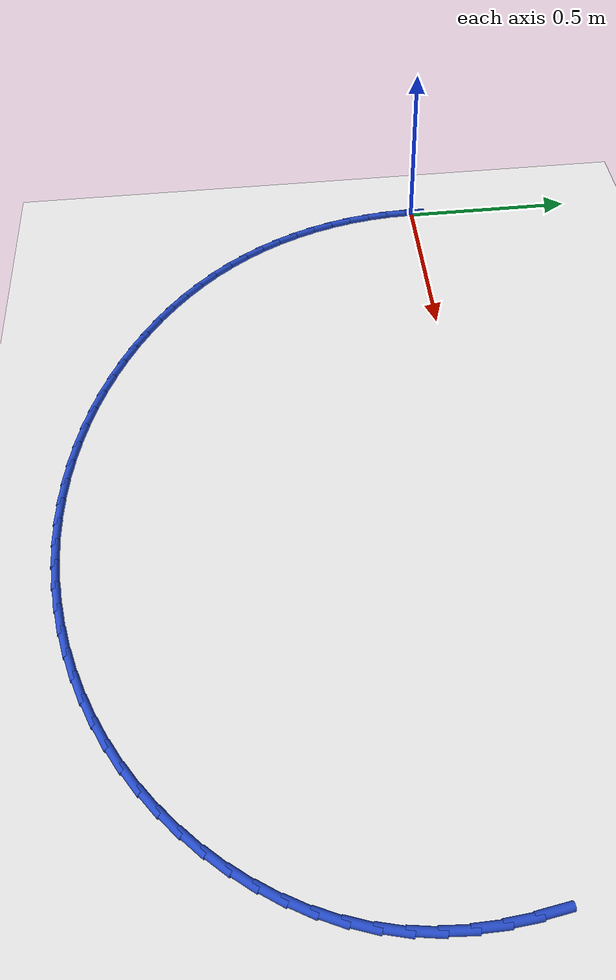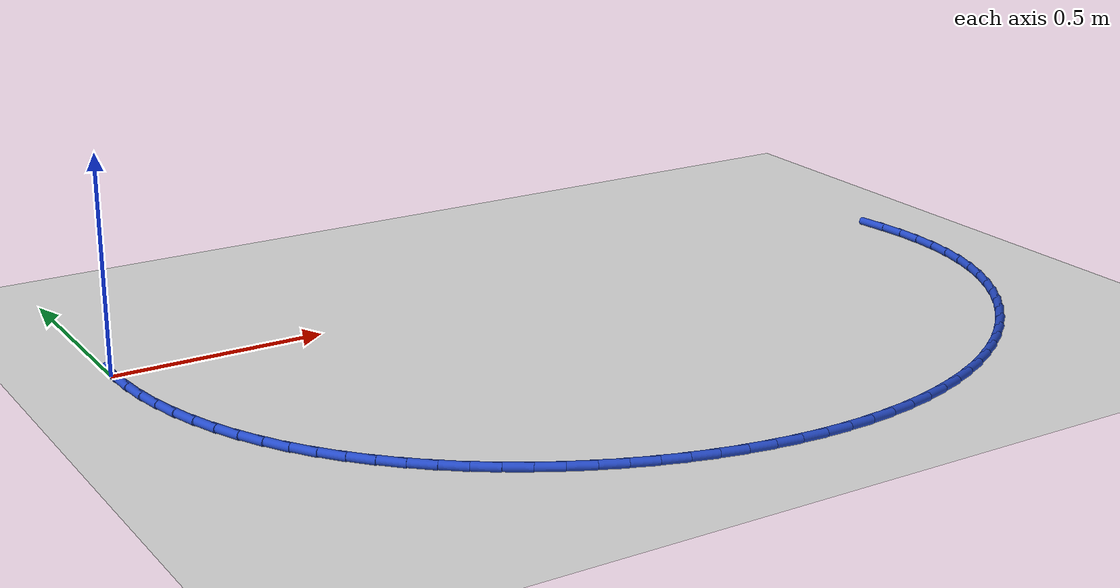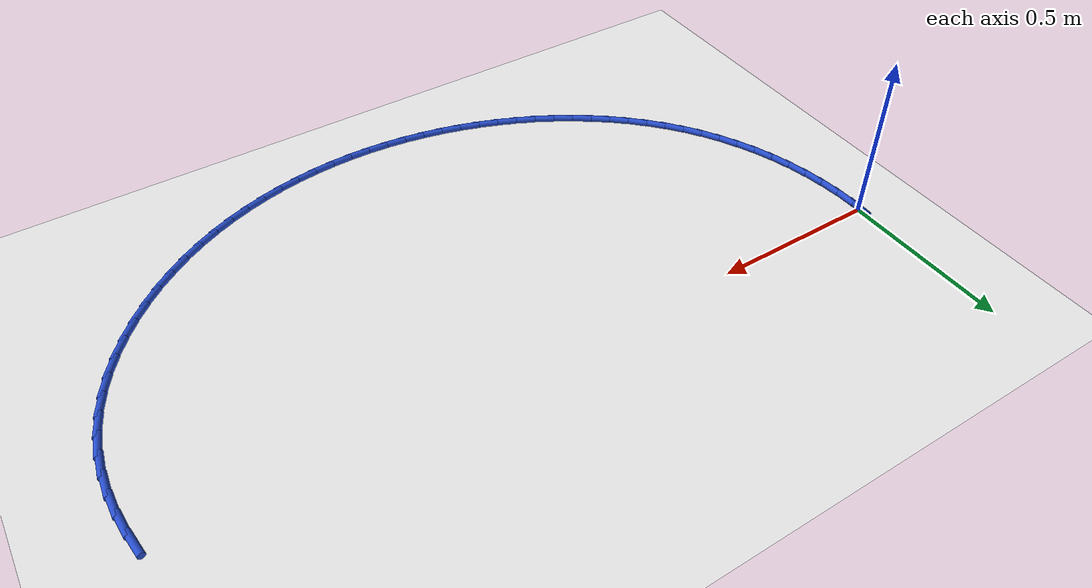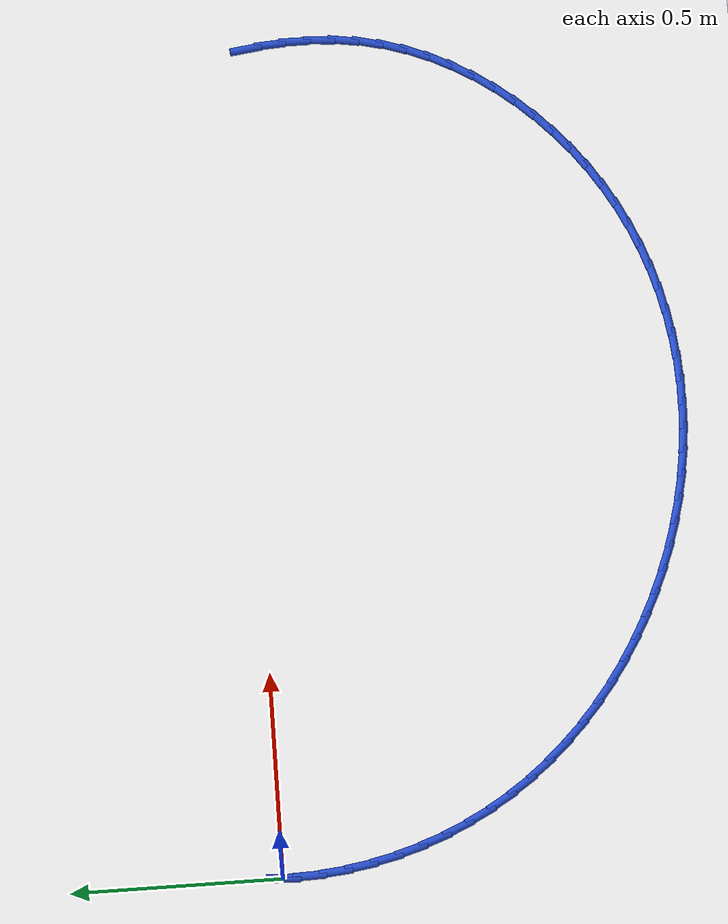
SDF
<sdf version="1.6">
 <world name="default">
  <model name="ground_plane">
   <static>1</static>
   <link name="link">
    <collision name="collision">
     <geometry><plane><normal>0 0 1</normal><size>100 100</size></plane></geometry>
     <surface><friction><ode><mu>100</mu><mu2>50</mu2></ode></friction></surface>
    </collision>
    <visual name="visual">
     <cast_shadows>0</cast_shadows>
     <geometry><plane><normal>0 0 1</normal><size>100 100</size></plane></geometry>
     <material>
      <script><uri>file://media/materials/scripts/gazebo.material</uri><name>Gazebo/WhiteGlow</name></script>
     </material>
    </visual>
   </link>
  </model>
  <model name="line">
   <link name="link_0">
    <pose>-2.0816681711721685e-17 1.5265566588595902e-16 0.01 0 1.57 1.5303718836059803</pose>
    <collision name="collision">
     <geometry><cylinder><radius>0.01</radius><length>0.08</length></cylinder></geometry>
    </collision>
    <visual name="visual">
     <material>
      <script><name>Gazebo/Blue</name><uri>file://media/materials/scripts/gazebo.material</uri></script>
     </material>
     <geometry><cylinder><radius>0.01</radius><length>0.08</length></cylinder></geometry>
    </visual>
   </link>
   <link name="link_56">
    <pose>2.1146289127504314 -0.044419449909421066 0.01 0 1.57 -1.4389344621826807</pose>
    <collision name="collision">
     <geometry><cylinder><radius>0.01</radius><length>0.08</length></cylinder></geometry>
    </collision>
    <visual name="visual">
     <material>
      <script><name>Gazebo/Blue</name><uri>file://media/materials/scripts/gazebo.material</uri></script>
     </material>
     <geometry><cylinder><radius>0.01</radius><length>0.08</length></cylinder></geometry>
    </visual>
   </link>
   <link name="link_57">
    <pose>2.122792557424717 -0.10597078999630039 0.01 0 1.57 -1.5045995138808235</pose>
    <collision name="collision">
     <geometry><cylinder><radius>0.01</radius><length>0.08</length></cylinder></geometry>
    </collision>
    <visual name="visual">
     <material>
      <script><name>Gazebo/Blue</name><uri>file://media/materials/scripts/gazebo.material</uri></script>
     </material>
     <geometry><cylinder><radius>0.01</radius><length>0.08</length></cylinder></geometry>
    </visual>
   </link>
   <link name="link_58">
    <pose>2.126874795708992 -0.1675488864064684 0.01 0 1.57 1.565920846297176</pose>
    <collision name="collision">
     <geometry><cylinder><radius>0.01</radius><length>0.08</length></cylinder></geometry>
    </collision>
    <visual name="visual">
     <material>
      <script><name>Gazebo/Blue</name><uri>file://media/materials/scripts/gazebo.material</uri></script>
     </material>
     <geometry><cylinder><radius>0.01</radius><length>0.08</length></cylinder></geometry>
    </visual>
   </link>
   <link name="link_59">
    <pose>2.126575904974597 -0.2288532781047258 0.01 0 1.57 1.4889816050388824</pose>
    <collision name="collision">
     <geometry><cylinder><radius>0.01</radius><length>0.08</length></cylinder></geometry>
    </collision>
    <visual name="visual">
     <material>
      <script><name>Gazebo/Blue</name><uri>file://media/materials/scripts/gazebo.material</uri></script>
     </material>
     <geometry><cylinder><radius>0.01</radius><length>0.08</length></cylinder></geometry>
    </visual>
   </link>
   <link name="link_60">
    <pose>2.121596162592872 -0.2895835040558706 0.01 0 1.57 1.4059015121983074</pose>
    <collision name="collision">
     <geometry><cylinder><radius>0.01</radius><length>0.08</length></cylinder></geometry>
    </collision>
    <visual name="visual">
     <material>
      <script><name>Gazebo/Blue</name><uri>file://media/materials/scripts/gazebo.material</uri></script>
     </material>
     <geometry><cylinder><radius>0.01</radius><length>0.08</length></cylinder></geometry>
    </visual>
   </link>
   <link name="link_61">
    <pose>2.111635845935158 -0.3494391032247035 0.01 0 1.57 1.3171328576119283</pose>
    <collision name="collision">
     <geometry><cylinder><radius>0.01</radius><length>0.08</length></cylinder></geometry>
    </collision>
    <visual name="visual">
     <material>
      <script><name>Gazebo/Blue</name><uri>file://media/materials/scripts/gazebo.material</uri></script>
     </material>
     <geometry><cylinder><radius>0.01</radius><length>0.08</length></cylinder></geometry>
    </visual>
   </link>
   <link name="link_62">
    <pose>2.0964221161447747 -0.40812319953450554 0.01 0 1.57 1.2288651771701562</pose>
    <collision name="collision">
     <geometry><cylinder><radius>0.01</radius><length>0.08</length></cylinder></geometry>
    </collision>
    <visual name="visual">
     <material>
      <script><name>Gazebo/Blue</name><uri>file://media/materials/scripts/gazebo.material</uri></script>
     </material>
     <geometry><cylinder><radius>0.01</radius><length>0.08</length></cylinder></geometry>
    </visual>
   </link>
   <link name="link_63">
    <pose>2.0760413548923813 -0.4653868190659603 0.01 0 1.57 1.1453648095254507</pose>
    <collision name="collision">
     <geometry><cylinder><radius>0.01</radius><length>0.08</length></cylinder></geometry>
    </collision>
    <visual name="visual">
     <material>
      <script><name>Gazebo/Blue</name><uri>file://media/materials/scripts/gazebo.material</uri></script>
     </material>
     <geometry><cylinder><radius>0.01</radius><length>0.08</length></cylinder></geometry>
    </visual>
   </link>
   <link name="link_64">
    <pose>2.050835990624423 -0.5210151318086342 0.01 0 1.57 1.0664748324044002</pose>
    <collision name="collision">
     <geometry><cylinder><radius>0.01</radius><length>0.08</length></cylinder></geometry>
    </collision>
    <visual name="visual">
     <material>
      <script><name>Gazebo/Blue</name><uri>file://media/materials/scripts/gazebo.material</uri></script>
     </material>
     <geometry><cylinder><radius>0.01</radius><length>0.08</length></cylinder></geometry>
    </visual>
   </link>
   <link name="link_65">
    <pose>2.0211539564285994 -0.5747940417975407 0.01 0 1.57 0.991764750637772</pose>
    <collision name="collision">
     <geometry><cylinder><radius>0.01</radius><length>0.08</length></cylinder></geometry>
    </collision>
    <visual name="visual">
     <material>
      <script><name>Gazebo/Blue</name><uri>file://media/materials/scripts/gazebo.material</uri></script>
     </material>
     <geometry><cylinder><radius>0.01</radius><length>0.08</length></cylinder></geometry>
    </visual>
   </link>
   <link name="link_66">
    <pose>1.9873431853926107 -0.6265094530676931 0.01 0 1.57 0.9206844364532961</pose>
    <collision name="collision">
     <geometry><cylinder><radius>0.01</radius><length>0.08</length></cylinder></geometry>
    </collision>
    <visual name="visual">
     <material>
      <script><name>Gazebo/Blue</name><uri>file://media/materials/scripts/gazebo.material</uri></script>
     </material>
     <geometry><cylinder><radius>0.01</radius><length>0.08</length></cylinder></geometry>
    </visual>
   </link>
   <link name="link_67">
    <pose>1.9497516106041561 -0.6759472696541027 0.01 0 1.57 0.8526111015912158</pose>
    <collision name="collision">
     <geometry><cylinder><radius>0.01</radius><length>0.08</length></cylinder></geometry>
    </collision>
    <visual name="visual">
     <material>
      <script><name>Gazebo/Blue</name><uri>file://media/materials/scripts/gazebo.material</uri></script>
     </material>
     <geometry><cylinder><radius>0.01</radius><length>0.08</length></cylinder></geometry>
    </visual>
   </link>
   <link name="link_68">
    <pose>1.908727165150935 -0.7228933955917834 0.01 0 1.57 0.7868804113805702</pose>
    <collision name="collision">
     <geometry><cylinder><radius>0.01</radius><length>0.08</length></cylinder></geometry>
    </collision>
    <visual name="visual">
     <material>
      <script><name>Gazebo/Blue</name><uri>file://media/materials/scripts/gazebo.material</uri></script>
     </material>
     <geometry><cylinder><radius>0.01</radius><length>0.08</length></cylinder></geometry>
    </visual>
   </link>
   <link name="link_69">
    <pose>1.8646177821206469 -0.7671337349157468 0.01 0 1.57 0.7228042023481455</pose>
    <collision name="collision">
     <geometry><cylinder><radius>0.01</radius><length>0.08</length></cylinder></geometry>
    </collision>
    <visual name="visual">
     <material>
      <script><name>Gazebo/Blue</name><uri>file://media/materials/scripts/gazebo.material</uri></script>
     </material>
     <geometry><cylinder><radius>0.01</radius><length>0.08</length></cylinder></geometry>
    </visual>
   </link>
   <link name="link_70">
    <pose>1.8177713946009912 -0.8084541916610063 0.01 0 1.57 0.6596779174228672</pose>
    <collision name="collision">
     <geometry><cylinder><radius>0.01</radius><length>0.08</length></cylinder></geometry>
    </collision>
    <visual name="visual">
     <material>
      <script><name>Gazebo/Blue</name><uri>file://media/materials/scripts/gazebo.material</uri></script>
     </material>
     <geometry><cylinder><radius>0.01</radius><length>0.08</length></cylinder></geometry>
    </visual>
   </link>
   <link name="link_71">
    <pose>1.7685359356796686 -0.8466406698625739 0.01 0 1.57 0.5968023985616995</pose>
    <collision name="collision">
     <geometry><cylinder><radius>0.01</radius><length>0.08</length></cylinder></geometry>
    </collision>
    <visual name="visual">
     <material>
      <script><name>Gazebo/Blue</name><uri>file://media/materials/scripts/gazebo.material</uri></script>
     </material>
     <geometry><cylinder><radius>0.01</radius><length>0.08</length></cylinder></geometry>
    </visual>
   </link>
   <link name="link_72">
    <pose>1.7172571188681824 -0.881482206658636 0.01 0 1.57 0.5342884557325881</pose>
    <collision name="collision">
     <geometry><cylinder><radius>0.01</radius><length>0.08</length></cylinder></geometry>
    </collision>
    <visual name="visual">
     <material>
      <script><name>Gazebo/Blue</name><uri>file://media/materials/scripts/gazebo.material</uri></script>
     </material>
     <geometry><cylinder><radius>0.01</radius><length>0.08</length></cylinder></geometry>
    </visual>
   </link>
   <link name="link_73">
    <pose>1.6642073202267287 -0.9128713606623244 0.01 0 1.57 0.4729122458575728</pose>
    <collision name="collision">
     <geometry><cylinder><radius>0.01</radius><length>0.08</length></cylinder></geometry>
    </collision>
    <visual name="visual">
     <material>
      <script><name>Gazebo/Blue</name><uri>file://media/materials/scripts/gazebo.material</uri></script>
     </material>
     <geometry><cylinder><radius>0.01</radius><length>0.08</length></cylinder></geometry>
    </visual>
   </link>
   <link name="link_74">
    <pose>1.6095705273699406 -0.9408254576021949 0.01 0 1.57 0.41277100673846173</pose>
    <collision name="collision">
     <geometry><cylinder><radius>0.01</radius><length>0.08</length></cylinder></geometry>
    </collision>
    <visual name="visual">
     <material>
      <script><name>Gazebo/Blue</name><uri>file://media/materials/scripts/gazebo.material</uri></script>
     </material>
     <geometry><cylinder><radius>0.01</radius><length>0.08</length></cylinder></geometry>
    </visual>
   </link>
   <link name="link_75">
    <pose>1.5535254652178672 -0.9653692519065489 0.01 0 1.57 0.3538675274624951</pose>
    <collision name="collision">
     <geometry><cylinder><radius>0.01</radius><length>0.08</length></cylinder></geometry>
    </collision>
    <visual name="visual">
     <material>
      <script><name>Gazebo/Blue</name><uri>file://media/materials/scripts/gazebo.material</uri></script>
     </material>
     <geometry><cylinder><radius>0.01</radius><length>0.08</length></cylinder></geometry>
    </visual>
   </link>
   <link name="link_76">
    <pose>1.496250858690554 -0.9865274980036887 0.01 0 1.57 0.2961661936802347</pose>
    <collision name="collision">
     <geometry><cylinder><radius>0.01</radius><length>0.08</length></cylinder></geometry>
    </collision>
    <visual name="visual">
     <material>
      <script><name>Gazebo/Blue</name><uri>file://media/materials/scripts/gazebo.material</uri></script>
     </material>
     <geometry><cylinder><radius>0.01</radius><length>0.08</length></cylinder></geometry>
    </visual>
   </link>
   <link name="link_77">
    <pose>1.4379254327080495 -1.0043249503219154 0.01 0 1.57 0.23959817533482256</pose>
    <collision name="collision">
     <geometry><cylinder><radius>0.01</radius><length>0.08</length></cylinder></geometry>
    </collision>
    <visual name="visual">
     <material>
      <script><name>Gazebo/Blue</name><uri>file://media/materials/scripts/gazebo.material</uri></script>
     </material>
     <geometry><cylinder><radius>0.01</radius><length>0.08</length></cylinder></geometry>
    </visual>
   </link>
   <link name="link_78">
    <pose>1.3787279121903993 -1.0187863632895318 0.01 0 1.57 0.1840667005748443</pose>
    <collision name="collision">
     <geometry><cylinder><radius>0.01</radius><length>0.08</length></cylinder></geometry>
    </collision>
    <visual name="visual">
     <material>
      <script><name>Gazebo/Blue</name><uri>file://media/materials/scripts/gazebo.material</uri></script>
     </material>
     <geometry><cylinder><radius>0.01</radius><length>0.08</length></cylinder></geometry>
    </visual>
   </link>
   <link name="link_79">
    <pose>1.3188370220576515 -1.0299364913348386 0.01 0 1.57 0.12945209036944957</pose>
    <collision name="collision">
     <geometry><cylinder><radius>0.01</radius><length>0.08</length></cylinder></geometry>
    </collision>
    <visual name="visual">
     <material>
      <script><name>Gazebo/Blue</name><uri>file://media/materials/scripts/gazebo.material</uri></script>
     </material>
     <geometry><cylinder><radius>0.01</radius><length>0.08</length></cylinder></geometry>
    </visual>
   </link>
   <link name="link_80">
    <pose>1.2584314872298523 -1.0378000888861385 0.01 0 1.57 0.07562093751727557</pose>
    <collision name="collision">
     <geometry><cylinder><radius>0.01</radius><length>0.08</length></cylinder></geometry>
    </collision>
    <visual name="visual">
     <material>
      <script><name>Gazebo/Blue</name><uri>file://media/materials/scripts/gazebo.material</uri></script>
     </material>
     <geometry><cylinder><radius>0.01</radius><length>0.08</length></cylinder></geometry>
    </visual>
   </link>
   <link name="link_81">
    <pose>1.1976896295996182 -1.0424022209237376 0.01 0 1.57 0.02260200500877963</pose>
    <collision name="collision">
     <geometry><cylinder><radius>0.01</radius><length>0.08</length></cylinder></geometry>
    </collision>
    <visual name="visual">
     <material>
      <script><name>Gazebo/Blue</name><uri>file://media/materials/scripts/gazebo.material</uri></script>
     </material>
     <geometry><cylinder><radius>0.01</radius><length>0.08</length></cylinder></geometry>
    </visual>
   </link>
   <link name="link_82">
    <pose>1.136775115061151 -1.0437792455790673 0.01 0 1.57 -0.029486556734163685</pose>
    <collision name="collision">
     <geometry><cylinder><radius>0.01</radius><length>0.08</length></cylinder></geometry>
    </collision>
    <visual name="visual">
     <material>
      <script><name>Gazebo/Blue</name><uri>file://media/materials/scripts/gazebo.material</uri></script>
     </material>
     <geometry><cylinder><radius>0.01</radius><length>0.08</length></cylinder></geometry>
    </visual>
   </link>
   <link name="link_83">
    <pose>1.0758331362884819 -1.0419817554874986 0.01 0 1.57 -0.08071972637590197</pose>
    <collision name="collision">
     <geometry><cylinder><radius>0.01</radius><length>0.08</length></cylinder></geometry>
    </collision>
    <visual name="visual">
     <material>
      <script><name>Gazebo/Blue</name><uri>file://media/materials/scripts/gazebo.material</uri></script>
     </material>
     <geometry><cylinder><radius>0.01</radius><length>0.08</length></cylinder></geometry>
    </visual>
   </link>
   <link name="link_84">
    <pose>1.0150077066381678 -1.0370612520051927 0.01 0 1.57 -0.13119992721764787</pose>
    <collision name="collision">
     <geometry><cylinder><radius>0.01</radius><length>0.08</length></cylinder></geometry>
    </collision>
    <visual name="visual">
     <material>
      <script><name>Gazebo/Blue</name><uri>file://media/materials/scripts/gazebo.material</uri></script>
     </material>
     <geometry><cylinder><radius>0.01</radius><length>0.08</length></cylinder></geometry>
    </visual>
   </link>
   <link name="link_85">
    <pose>0.9544428394667637 -1.029069236488312 0.01 0 1.57 -0.181040572360269</pose>
    <collision name="collision">
     <geometry><cylinder><radius>0.01</radius><length>0.08</length></cylinder></geometry>
    </collision>
    <visual name="visual">
     <material>
      <script><name>Gazebo/Blue</name><uri>file://media/materials/scripts/gazebo.material</uri></script>
     </material>
     <geometry><cylinder><radius>0.01</radius><length>0.08</length></cylinder></geometry>
    </visual>
   </link>
   <link name="link_86">
    <pose>0.8942825481308273 -1.018057210293018 0.01 0 1.57 -0.2303633789605129</pose>
    <collision name="collision">
     <geometry><cylinder><radius>0.01</radius><length>0.08</length></cylinder></geometry>
    </collision>
    <visual name="visual">
     <material>
      <script><name>Gazebo/Blue</name><uri>file://media/materials/scripts/gazebo.material</uri></script>
     </material>
     <geometry><cylinder><radius>0.01</radius><length>0.08</length></cylinder></geometry>
    </visual>
   </link>
   <link name="link_87">
    <pose>0.8346708459869131 -1.0040766747754721 0.01 0 1.57 -0.2792960202069562</pose>
    <collision name="collision">
     <geometry><cylinder><radius>0.01</radius><length>0.08</length></cylinder></geometry>
    </collision>
    <visual name="visual">
     <material>
      <script><name>Gazebo/Blue</name><uri>file://media/materials/scripts/gazebo.material</uri></script>
     </material>
     <geometry><cylinder><radius>0.01</radius><length>0.08</length></cylinder></geometry>
    </visual>
   </link>
   <link name="link_88">
    <pose>0.7757517463915786 -0.9871791312918361 0.01 0 1.57 -0.3279700684142357</pose>
    <collision name="collision">
     <geometry><cylinder><radius>0.01</radius><length>0.08</length></cylinder></geometry>
    </collision>
    <visual name="visual">
     <material>
      <script><name>Gazebo/Blue</name><uri>file://media/materials/scripts/gazebo.material</uri></script>
     </material>
     <geometry><cylinder><radius>0.01</radius><length>0.08</length></cylinder></geometry>
    </visual>
   </link>
   <link name="link_89">
    <pose>0.7176692627013791 -0.967416081198272 0.01 0 1.57 -0.3765191647325336</pose>
    <collision name="collision">
     <geometry><cylinder><radius>0.01</radius><length>0.08</length></cylinder></geometry>
    </collision>
    <visual name="visual">
     <material>
      <script><name>Gazebo/Blue</name><uri>file://media/materials/scripts/gazebo.material</uri></script>
     </material>
     <geometry><cylinder><radius>0.01</radius><length>0.08</length></cylinder></geometry>
    </visual>
   </link>
   <link name="link_90">
    <pose>0.660567408272872 -0.9448390258509419 0.01 0 1.57 -0.42507734040269246</pose>
    <collision name="collision">
     <geometry><cylinder><radius>0.01</radius><length>0.08</length></cylinder></geometry>
    </collision>
    <visual name="visual">
     <material>
      <script><name>Gazebo/Blue</name><uri>file://media/materials/scripts/gazebo.material</uri></script>
     </material>
     <geometry><cylinder><radius>0.01</radius><length>0.08</length></cylinder></geometry>
    </visual>
   </link>
   <link name="link_91">
    <pose>0.6045901964626117 -0.9194994666060065 0.01 0 1.57 -0.4738035801775714</pose>
    <collision name="collision">
     <geometry><cylinder><radius>0.01</radius><length>0.08</length></cylinder></geometry>
    </collision>
    <visual name="visual">
     <material>
      <script><name>Gazebo/Blue</name><uri>file://media/materials/scripts/gazebo.material</uri></script>
     </material>
     <geometry><cylinder><radius>0.01</radius><length>0.08</length></cylinder></geometry>
    </visual>
   </link>
   <link name="link_92">
    <pose>0.5498845016646071 -0.8914485636663749 0.01 0 1.57 -0.5231970689309069</pose>
    <collision name="collision">
     <geometry><cylinder><radius>0.01</radius><length>0.08</length></cylinder></geometry>
    </collision>
    <visual name="visual">
     <material>
      <script><name>Gazebo/Blue</name><uri>file://media/materials/scripts/gazebo.material</uri></script>
     </material>
     <geometry><cylinder><radius>0.01</radius><length>0.08</length></cylinder></geometry>
    </visual>
   </link>
   <link name="link_93">
    <pose>0.4966342901065791 -0.860733054363895 0.01 0 1.57 -0.573730919432278</pose>
    <collision name="collision">
     <geometry><cylinder><radius>0.01</radius><length>0.08</length></cylinder></geometry>
    </collision>
    <visual name="visual">
     <material>
      <script><name>Gazebo/Blue</name><uri>file://media/materials/scripts/gazebo.material</uri></script>
     </material>
     <geometry><cylinder><radius>0.01</radius><length>0.08</length></cylinder></geometry>
    </visual>
   </link>
   <link name="link_94">
    <pose>0.4450494133335682 -0.8273965894367005 0.01 0 1.57 -0.6256538688000719</pose>
    <collision name="collision">
     <geometry><cylinder><radius>0.01</radius><length>0.08</length></cylinder></geometry>
    </collision>
    <visual name="visual">
     <material>
      <script><name>Gazebo/Blue</name><uri>file://media/materials/scripts/gazebo.material</uri></script>
     </material>
     <geometry><cylinder><radius>0.01</radius><length>0.08</length></cylinder></geometry>
    </visual>
   </link>
   <link name="link_95">
    <pose>0.3953402513110143 -0.7914827566134925 0.01 0 1.57 -0.6791955438896974</pose>
    <collision name="collision">
     <geometry><cylinder><radius>0.01</radius><length>0.08</length></cylinder></geometry>
    </collision>
    <visual name="visual">
     <material>
      <script><name>Gazebo/Blue</name><uri>file://media/materials/scripts/gazebo.material</uri></script>
     </material>
     <geometry><cylinder><radius>0.01</radius><length>0.08</length></cylinder></geometry>
    </visual>
   </link>
   <link name="link_96">
    <pose>0.3477171840043603 -0.7530351436229753 0.01 0 1.57 -0.734565994303565</pose>
    <collision name="collision">
     <geometry><cylinder><radius>0.01</radius><length>0.08</length></cylinder></geometry>
    </collision>
    <visual name="visual">
     <material>
      <script><name>Gazebo/Blue</name><uri>file://media/materials/scripts/gazebo.material</uri></script>
     </material>
     <geometry><cylinder><radius>0.01</radius><length>0.08</length></cylinder></geometry>
    </visual>
   </link>
   <link name="link_97">
    <pose>0.30239059137904684 -0.7120973381938509 0.01 0 1.57 -0.7919484756127247</pose>
    <collision name="collision">
     <geometry><cylinder><radius>0.01</radius><length>0.08</length></cylinder></geometry>
    </collision>
    <visual name="visual">
     <material>
      <script><name>Gazebo/Blue</name><uri>file://media/materials/scripts/gazebo.material</uri></script>
     </material>
     <geometry><cylinder><radius>0.01</radius><length>0.08</length></cylinder></geometry>
    </visual>
   </link>
   <link name="link_98">
    <pose>0.2595708534005146 -0.6687129280548213 0.01 0 1.57 -0.8514902390737452</pose>
    <collision name="collision">
     <geometry><cylinder><radius>0.01</radius><length>0.08</length></cylinder></geometry>
    </collision>
    <visual name="visual">
     <material>
      <script><name>Gazebo/Blue</name><uri>file://media/materials/scripts/gazebo.material</uri></script>
     </material>
     <geometry><cylinder><radius>0.01</radius><length>0.08</length></cylinder></geometry>
    </visual>
   </link>
   <link name="link_99">
    <pose>0.21946835003420645 -0.6229255009345905 0.01 0 1.57 -0.9132914748285789</pose>
    <collision name="collision">
     <geometry><cylinder><radius>0.01</radius><length>0.08</length></cylinder></geometry>
    </collision>
    <visual name="visual">
     <material>
      <script><name>Gazebo/Blue</name><uri>file://media/materials/scripts/gazebo.material</uri></script>
     </material>
     <geometry><cylinder><radius>0.01</radius><length>0.08</length></cylinder></geometry>
    </visual>
   </link>
   <link name="link_100">
    <pose>0.18229346124556225 -0.5747786445618598 0.01 0 1.57 -0.977373321722789</pose>
    <collision name="collision">
     <geometry><cylinder><radius>0.01</radius><length>0.08</length></cylinder></geometry>
    </collision>
    <visual name="visual">
     <material>
      <script><name>Gazebo/Blue</name><uri>file://media/materials/scripts/gazebo.material</uri></script>
     </material>
     <geometry><cylinder><radius>0.01</radius><length>0.08</length></cylinder></geometry>
    </visual>
   </link>
   <link name="link_101">
    <pose>0.14825585389894486 -0.524317020263707 0.01 0 1.57 -1.0424372291353936</pose>
    <collision name="collision">
     <geometry><cylinder><radius>0.01</radius><length>0.08</length></cylinder></geometry>
    </collision>
    <visual name="visual">
     <material>
      <script><name>Gazebo/Blue</name><uri>file://media/materials/scripts/gazebo.material</uri></script>
     </material>
     <geometry><cylinder><radius>0.01</radius><length>0.08</length></cylinder></geometry>
    </visual>
   </link>
   <link name="link_102">
    <pose>0.11751748454030223 -0.47165711890401213 0.01 0 1.57 -1.1065459240799336</pose>
    <collision name="collision">
     <geometry><cylinder><radius>0.01</radius><length>0.08</length></cylinder></geometry>
    </collision>
    <visual name="visual">
     <material>
      <script><name>Gazebo/Blue</name><uri>file://media/materials/scripts/gazebo.material</uri></script>
     </material>
     <geometry><cylinder><radius>0.01</radius><length>0.08</length></cylinder></geometry>
    </visual>
   </link>
   <link name="link_103">
    <pose>0.09016337906565598 -0.4170312531045983 0.01 0 1.57 -1.1697757964954016</pose>
    <collision name="collision">
     <geometry><cylinder><radius>0.01</radius><length>0.08</length></cylinder></geometry>
    </collision>
    <visual name="visual">
     <material>
      <script><name>Gazebo/Blue</name><uri>file://media/materials/scripts/gazebo.material</uri></script>
     </material>
     <geometry><cylinder><radius>0.01</radius><length>0.08</length></cylinder></geometry>
    </visual>
   </link>
   <link name="link_104">
    <pose>0.06627158474292195 -0.3606822420536008 0.01 0 1.57 -1.2324099785418168</pose>
    <collision name="collision">
     <geometry><cylinder><radius>0.01</radius><length>0.08</length></cylinder></geometry>
    </collision>
    <visual name="visual">
     <material>
      <script><name>Gazebo/Blue</name><uri>file://media/materials/scripts/gazebo.material</uri></script>
     </material>
     <geometry><cylinder><radius>0.01</radius><length>0.08</length></cylinder></geometry>
    </visual>
   </link>
   <link name="link_105">
    <pose>0.045920148840017085 -0.3028529049391568 0.01 0 1.57 -1.29473967204363</pose>
    <collision name="collision">
     <geometry><cylinder><radius>0.01</radius><length>0.08</length></cylinder></geometry>
    </collision>
    <visual name="visual">
     <material>
      <script><name>Gazebo/Blue</name><uri>file://media/materials/scripts/gazebo.material</uri></script>
     </material>
     <geometry><cylinder><radius>0.01</radius><length>0.08</length></cylinder></geometry>
    </visual>
   </link>
   <link name="link_106">
    <pose>0.02918711862485734 -0.24378606094940147 0.01 0 1.57 -1.357058041964519</pose>
    <collision name="collision">
     <geometry><cylinder><radius>0.01</radius><length>0.08</length></cylinder></geometry>
    </collision>
    <visual name="visual">
     <material>
      <script><name>Gazebo/Blue</name><uri>file://media/materials/scripts/gazebo.material</uri></script>
     </material>
     <geometry><cylinder><radius>0.01</radius><length>0.08</length></cylinder></geometry>
    </visual>
   </link>
   <link name="link_107">
    <pose>0.016150541365359476 -0.1837245292724725 0.01 0 1.57 -1.4196545999801378</pose>
    <collision name="collision">
     <geometry><cylinder><radius>0.01</radius><length>0.08</length></cylinder></geometry>
    </collision>
    <visual name="visual">
     <material>
      <script><name>Gazebo/Blue</name><uri>file://media/materials/scripts/gazebo.material</uri></script>
     </material>
     <geometry><cylinder><radius>0.01</radius><length>0.08</length></cylinder></geometry>
    </visual>
   </link>
   <link name="link_108">
    <pose>0.006888464329439615 -0.12291112909650456 0.01 0 1.57 -1.4828095815356814</pose>
    <collision name="collision">
     <geometry><cylinder><radius>0.01</radius><length>0.08</length></cylinder></geometry>
    </collision>
    <visual name="visual">
     <material>
      <script><name>Gazebo/Blue</name><uri>file://media/materials/scripts/gazebo.material</uri></script>
     </material>
     <geometry><cylinder><radius>0.01</radius><length>0.08</length></cylinder></geometry>
    </visual>
   </link>
   <link name="link_109">
    <pose>0.0014789347850143672 -0.0615886796096355 0.01 0 1.57 -1.5467878462222182</pose>
    <collision name="collision">
     <geometry><cylinder><radius>0.01</radius><length>0.08</length></cylinder></geometry>
    </collision>
    <visual name="visual">
     <material>
      <script><name>Gazebo/Blue</name><uri>file://media/materials/scripts/gazebo.material</uri></script>
     </material>
     <geometry><cylinder><radius>0.01</radius><length>0.08</length></cylinder></geometry>
    </visual>
   </link>
   <link name="link_110">
    <pose>3.469446951953614e-18 0.0 0.01 0 1.57 1.5297607586001434</pose>
    <collision name="collision">
     <geometry><cylinder><radius>0.01</radius><length>0.08</length></cylinder></geometry>
    </collision>
    <visual name="visual">
     <material>
      <script><name>Gazebo/Blue</name><uri>file://media/materials/scripts/gazebo.material</uri></script>
     </material>
     <geometry><cylinder><radius>0.01</radius><length>0.08</length></cylinder></geometry>
    </visual>
   </link>
  </model>
 </world>
</sdf>
